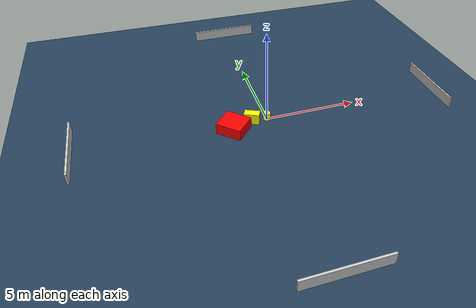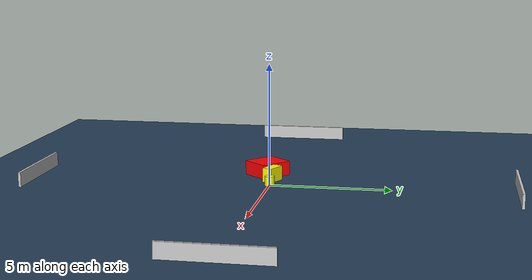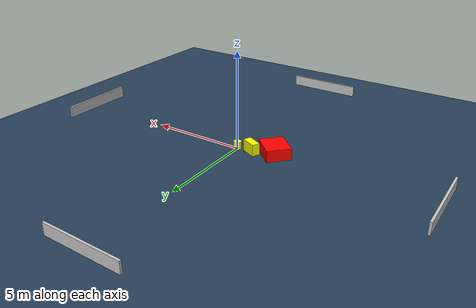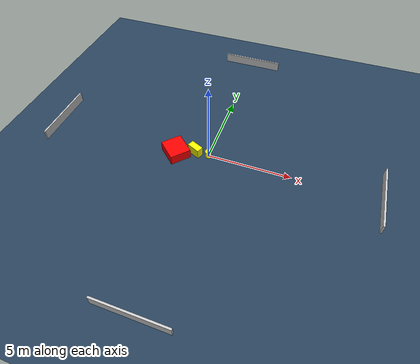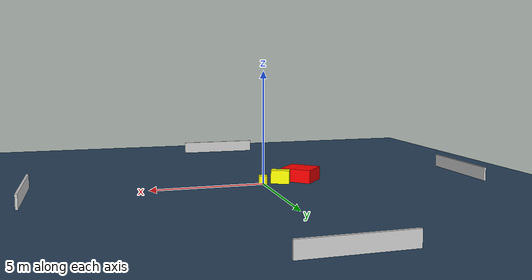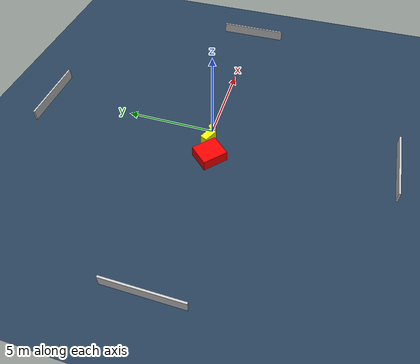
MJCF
<?xml version="1.0" ?>
<mujoco model="generated_environment">
  <option timestep="0.01" integrator="RK4" cone="elliptic"/>
  <default>
    <geom density="1"/>
  </default>
  <asset>
    <texture builtin="gradient" height="3072" name="skybox" rgb1="0.3 0.5 0.7" rgb2="0 0 0" type="skybox" width="512"/>
    <texture builtin="checker" height="300" name="groundplane" rgb1="0.2 0.3 0.4" rgb2="0.1 0.2 0.3" type="2d" width="300"/>
    <material name="groundplane" reflectance="0.2" texrepeat="5 5" texture="groundplane"/>
  </asset>
  <worldbody>
    <light dir="0 0 -1" directional="true" pos="0 0 1.5"/>
    <geom condim="3" friction="0.5 0.005 0.001" material="groundplane" name="floor" pos="0 0 0" size="0 0 0.05" type="plane"/>
    <body name="walls">
      <geom name="wall_1" condim="4" pos="-10.0 0.0 0.3" rgba="0.800000011920929 0.800000011920929 0.800000011920929 1.0" size="0.05 2.0 0.3" type="box"/>
      <geom name="wall_2" condim="4" pos="10.0 0.0 0.3" rgba="0.800000011920929 0.800000011920929 0.800000011920929 1.0" size="0.05 2.0 0.3" type="box"/>
      <geom name="wall_3" condim="4" pos="0.0 -10.0 0.3" rgba="0.800000011920929 0.800000011920929 0.800000011920929 1.0" size="2.0 0.05 0.3" type="box"/>
      <geom name="wall_4" condim="4" pos="0.0 10.0 0.3" rgba="0.800000011920929 0.800000011920929 0.800000011920929 1.0" size="2.0 0.05 0.3" type="box"/>
    </body>
    <body name="robot">
      <joint name="joint_x" type="slide" pos="0 0 0" axis="1 0 0"/>
      <joint name="joint_y" type="slide" pos="0 0 0" axis="0 1 0"/>
      <geom name="robot" type="cylinder" pos="0.0 0.0 0.2" size="0.2 0.2 0.0" mass="5.0" friction="1.0 0.005 0.0001" condim="4" rgba="1.0 1.0 0.0 1.0"/>
    </body>
    <body name="obstacle_1_movable">
      <geom name="obstacle_1_movable" condim="4" pos="-0.8127405489479118 -0.015275258705216052 0.3" euler="0 0 245.27239663015615" friction="0.0 0.005 0.001" rgba="1.0 1.0 0.0 1.0" size="0.20925599662244512 0.40753326781568255 0.3" type="box" mass="0.1"/>
      <joint type="free"/>
    </body>
    <body name="obstacle_2_static">
      <geom name="obstacle_2_static" condim="4" pos="-1.9073933328432346 -0.41576895492864835 0.3" euler="0 0 227.55804015239465" friction="0.0 0.005 0.001" rgba="1.0 0.0 0.0 1.0" size="0.6283116040345544 0.6990238992139743 0.3" type="box"/>
    </body>
  </worldbody>
  <actuator>
    <motor name="actuator_x" joint="joint_x" gear="1" ctrlrange="-1 1"/>
    <motor name="actuator_y" joint="joint_y" gear="1" ctrlrange="-1 1"/>
  </actuator>
</mujoco>
